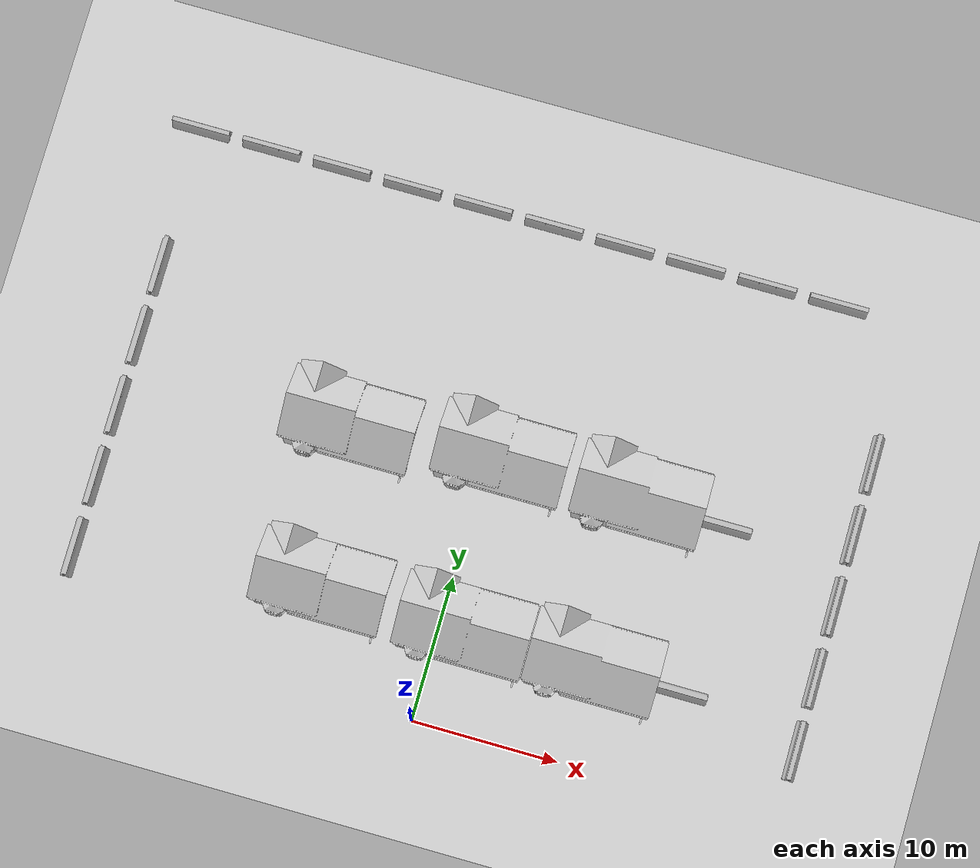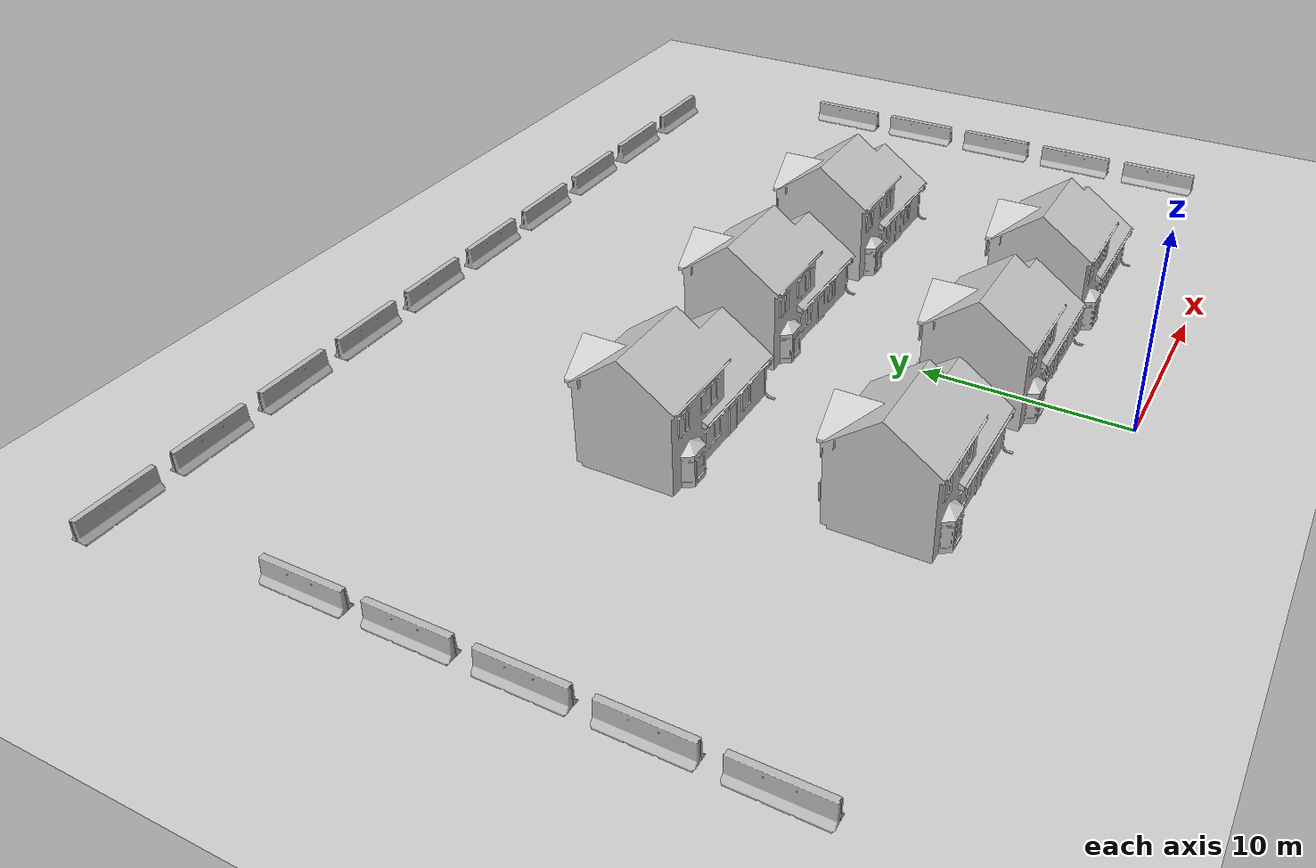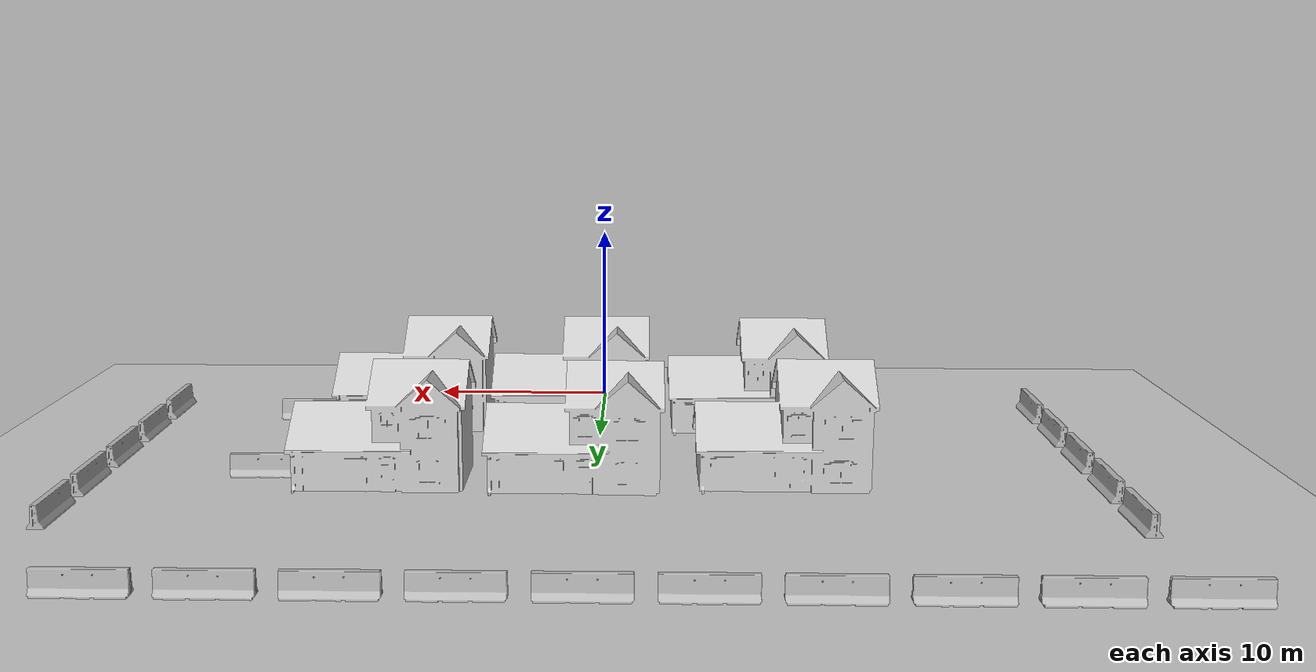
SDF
<sdf version="1.6">
 <world name="default">
  <model name="ground_plane">
   <static>1</static>
   <link name="link">
    <collision name="collision">
     <geometry><plane><normal>0 0 1</normal><size>100 100</size></plane></geometry>
     <surface><friction><ode><mu>100</mu><mu2>50</mu2></ode></friction></surface>
    </collision>
    <visual name="visual">
     <cast_shadows>0</cast_shadows>
     <geometry><plane><normal>0 0 1</normal><size>100 100</size></plane></geometry>
     <material>
      <script><uri>file://media/materials/scripts/gazebo.material</uri><name>Gazebo/Grey</name></script>
     </material>
    </visual>
   </link>
  </model>
  <model name="b11">
   <static>1</static>
   <link name="link">
    <visual name="visual">
     <geometry>
      <mesh><uri>model://jersey_barrier/meshes/jersey_barrier.dae</uri><scale>1 1 1</scale></mesh>
     </geometry>
    </visual>
    <collision name="upright">
     <pose>0 0 0.5715 0 -0 0</pose>
     <geometry><box><size>4.06542 0.3063 1.143</size></box></geometry>
    </collision>
    <collision name="base">
     <pose>0 0 0.032258 0 -0 0</pose>
     <geometry><box><size>4.06542 0.8107 0.064516</size></box></geometry>
    </collision>
    <collision name="base2">
     <pose>0 0 0.1 0 -0 0</pose>
     <geometry><box><size>4.06542 0.65 0.1</size></box></geometry>
    </collision>
    <collision name="base3">
     <pose>0 0 0.2 0 -0 0</pose>
     <geometry><box><size>4.06542 0.5 0.1</size></box></geometry>
    </collision>
    <collision name="left-angle">
     <pose>0 -0.224 0.2401 0.9 -0 0</pose>
     <geometry><box><size>4.06542 0.5 0.064516</size></box></geometry>
    </collision>
    <collision name="right-angle">
     <pose>0 0.224 0.2401 -0.9 0 0</pose>
     <geometry><box><size>4.06542 0.5 0.064516</size></box></geometry>
    </collision>
   </link>
   <pose>-25 35 0 0 -0 0</pose>
  </model>
  <model name="b12">
   <static>1</static>
   <link name="link">
    <visual name="visual">
     <geometry>
      <mesh><uri>model://jersey_barrier/meshes/jersey_barrier.dae</uri><scale>1 1 1</scale></mesh>
     </geometry>
    </visual>
    <collision name="upright">
     <pose>0 0 0.5715 0 -0 0</pose>
     <geometry><box><size>4.06542 0.3063 1.143</size></box></geometry>
    </collision>
    <collision name="base">
     <pose>0 0 0.032258 0 -0 0</pose>
     <geometry><box><size>4.06542 0.8107 0.064516</size></box></geometry>
    </collision>
    <collision name="base2">
     <pose>0 0 0.1 0 -0 0</pose>
     <geometry><box><size>4.06542 0.65 0.1</size></box></geometry>
    </collision>
    <collision name="base3">
     <pose>0 0 0.2 0 -0 0</pose>
     <geometry><box><size>4.06542 0.5 0.1</size></box></geometry>
    </collision>
    <collision name="left-angle">
     <pose>0 -0.224 0.2401 0.9 -0 0</pose>
     <geometry><box><size>4.06542 0.5 0.064516</size></box></geometry>
    </collision>
    <collision name="right-angle">
     <pose>0 0.224 0.2401 -0.9 0 0</pose>
     <geometry><box><size>4.06542 0.5 0.064516</size></box></geometry>
    </collision>
   </link>
   <pose>-20 35 0 0 -0 0</pose>
  </model>
  <model name="b13">
   <static>1</static>
   <link name="link">
    <visual name="visual">
     <geometry>
      <mesh><uri>model://jersey_barrier/meshes/jersey_barrier.dae</uri><scale>1 1 1</scale></mesh>
     </geometry>
    </visual>
    <collision name="upright">
     <pose>0 0 0.5715 0 -0 0</pose>
     <geometry><box><size>4.06542 0.3063 1.143</size></box></geometry>
    </collision>
    <collision name="base">
     <pose>0 0 0.032258 0 -0 0</pose>
     <geometry><box><size>4.06542 0.8107 0.064516</size></box></geometry>
    </collision>
    <collision name="base2">
     <pose>0 0 0.1 0 -0 0</pose>
     <geometry><box><size>4.06542 0.65 0.1</size></box></geometry>
    </collision>
    <collision name="base3">
     <pose>0 0 0.2 0 -0 0</pose>
     <geometry><box><size>4.06542 0.5 0.1</size></box></geometry>
    </collision>
    <collision name="left-angle">
     <pose>0 -0.224 0.2401 0.9 -0 0</pose>
     <geometry><box><size>4.06542 0.5 0.064516</size></box></geometry>
    </collision>
    <collision name="right-angle">
     <pose>0 0.224 0.2401 -0.9 0 0</pose>
     <geometry><box><size>4.06542 0.5 0.064516</size></box></geometry>
    </collision>
   </link>
   <pose>-15 35 0 0 -0 0</pose>
  </model>
  <model name="b14">
   <static>1</static>
   <link name="link">
    <visual name="visual">
     <geometry>
      <mesh><uri>model://jersey_barrier/meshes/jersey_barrier.dae</uri><scale>1 1 1</scale></mesh>
     </geometry>
    </visual>
    <collision name="upright">
     <pose>0 0 0.5715 0 -0 0</pose>
     <geometry><box><size>4.06542 0.3063 1.143</size></box></geometry>
    </collision>
    <collision name="base">
     <pose>0 0 0.032258 0 -0 0</pose>
     <geometry><box><size>4.06542 0.8107 0.064516</size></box></geometry>
    </collision>
    <collision name="base2">
     <pose>0 0 0.1 0 -0 0</pose>
     <geometry><box><size>4.06542 0.65 0.1</size></box></geometry>
    </collision>
    <collision name="base3">
     <pose>0 0 0.2 0 -0 0</pose>
     <geometry><box><size>4.06542 0.5 0.1</size></box></geometry>
    </collision>
    <collision name="left-angle">
     <pose>0 -0.224 0.2401 0.9 -0 0</pose>
     <geometry><box><size>4.06542 0.5 0.064516</size></box></geometry>
    </collision>
    <collision name="right-angle">
     <pose>0 0.224 0.2401 -0.9 0 0</pose>
     <geometry><box><size>4.06542 0.5 0.064516</size></box></geometry>
    </collision>
   </link>
   <pose>-10 35 0 0 -0 0</pose>
  </model>
  <model name="b15">
   <static>1</static>
   <link name="link">
    <visual name="visual">
     <geometry>
      <mesh><uri>model://jersey_barrier/meshes/jersey_barrier.dae</uri><scale>1 1 1</scale></mesh>
     </geometry>
    </visual>
    <collision name="upright">
     <pose>0 0 0.5715 0 -0 0</pose>
     <geometry><box><size>4.06542 0.3063 1.143</size></box></geometry>
    </collision>
    <collision name="base">
     <pose>0 0 0.032258 0 -0 0</pose>
     <geometry><box><size>4.06542 0.8107 0.064516</size></box></geometry>
    </collision>
    <collision name="base2">
     <pose>0 0 0.1 0 -0 0</pose>
     <geometry><box><size>4.06542 0.65 0.1</size></box></geometry>
    </collision>
    <collision name="base3">
     <pose>0 0 0.2 0 -0 0</pose>
     <geometry><box><size>4.06542 0.5 0.1</size></box></geometry>
    </collision>
    <collision name="left-angle">
     <pose>0 -0.224 0.2401 0.9 -0 0</pose>
     <geometry><box><size>4.06542 0.5 0.064516</size></box></geometry>
    </collision>
    <collision name="right-angle">
     <pose>0 0.224 0.2401 -0.9 0 0</pose>
     <geometry><box><size>4.06542 0.5 0.064516</size></box></geometry>
    </collision>
   </link>
   <pose>-5 35 0 0 -0 0</pose>
  </model>
  <model name="b16">
   <static>1</static>
   <link name="link">
    <visual name="visual">
     <geometry>
      <mesh><uri>model://jersey_barrier/meshes/jersey_barrier.dae</uri><scale>1 1 1</scale></mesh>
     </geometry>
    </visual>
    <collision name="upright">
     <pose>0 0 0.5715 0 -0 0</pose>
     <geometry><box><size>4.06542 0.3063 1.143</size></box></geometry>
    </collision>
    <collision name="base">
     <pose>0 0 0.032258 0 -0 0</pose>
     <geometry><box><size>4.06542 0.8107 0.064516</size></box></geometry>
    </collision>
    <collision name="base2">
     <pose>0 0 0.1 0 -0 0</pose>
     <geometry><box><size>4.06542 0.65 0.1</size></box></geometry>
    </collision>
    <collision name="base3">
     <pose>0 0 0.2 0 -0 0</pose>
     <geometry><box><size>4.06542 0.5 0.1</size></box></geometry>
    </collision>
    <collision name="left-angle">
     <pose>0 -0.224 0.2401 0.9 -0 0</pose>
     <geometry><box><size>4.06542 0.5 0.064516</size></box></geometry>
    </collision>
    <collision name="right-angle">
     <pose>0 0.224 0.2401 -0.9 0 0</pose>
     <geometry><box><size>4.06542 0.5 0.064516</size></box></geometry>
    </collision>
   </link>
   <pose>0 35 0 0 -0 0</pose>
  </model>
  <model name="b17">
   <static>1</static>
   <link name="link">
    <visual name="visual">
     <geometry>
      <mesh><uri>model://jersey_barrier/meshes/jersey_barrier.dae</uri><scale>1 1 1</scale></mesh>
     </geometry>
    </visual>
    <collision name="upright">
     <pose>0 0 0.5715 0 -0 0</pose>
     <geometry><box><size>4.06542 0.3063 1.143</size></box></geometry>
    </collision>
    <collision name="base">
     <pose>0 0 0.032258 0 -0 0</pose>
     <geometry><box><size>4.06542 0.8107 0.064516</size></box></geometry>
    </collision>
    <collision name="base2">
     <pose>0 0 0.1 0 -0 0</pose>
     <geometry><box><size>4.06542 0.65 0.1</size></box></geometry>
    </collision>
    <collision name="base3">
     <pose>0 0 0.2 0 -0 0</pose>
     <geometry><box><size>4.06542 0.5 0.1</size></box></geometry>
    </collision>
    <collision name="left-angle">
     <pose>0 -0.224 0.2401 0.9 -0 0</pose>
     <geometry><box><size>4.06542 0.5 0.064516</size></box></geometry>
    </collision>
    <collision name="right-angle">
     <pose>0 0.224 0.2401 -0.9 0 0</pose>
     <geometry><box><size>4.06542 0.5 0.064516</size></box></geometry>
    </collision>
   </link>
   <pose>5 35 0 0 -0 0</pose>
  </model>
  <model name="b18">
   <static>1</static>
   <link name="link">
    <visual name="visual">
     <geometry>
      <mesh><uri>model://jersey_barrier/meshes/jersey_barrier.dae</uri><scale>1 1 1</scale></mesh>
     </geometry>
    </visual>
    <collision name="upright">
     <pose>0 0 0.5715 0 -0 0</pose>
     <geometry><box><size>4.06542 0.3063 1.143</size></box></geometry>
    </collision>
    <collision name="base">
     <pose>0 0 0.032258 0 -0 0</pose>
     <geometry><box><size>4.06542 0.8107 0.064516</size></box></geometry>
    </collision>
    <collision name="base2">
     <pose>0 0 0.1 0 -0 0</pose>
     <geometry><box><size>4.06542 0.65 0.1</size></box></geometry>
    </collision>
    <collision name="base3">
     <pose>0 0 0.2 0 -0 0</pose>
     <geometry><box><size>4.06542 0.5 0.1</size></box></geometry>
    </collision>
    <collision name="left-angle">
     <pose>0 -0.224 0.2401 0.9 -0 0</pose>
     <geometry><box><size>4.06542 0.5 0.064516</size></box></geometry>
    </collision>
    <collision name="right-angle">
     <pose>0 0.224 0.2401 -0.9 0 0</pose>
     <geometry><box><size>4.06542 0.5 0.064516</size></box></geometry>
    </collision>
   </link>
   <pose>10 35 0 0 -0 0</pose>
  </model>
  <model name="b19">
   <static>1</static>
   <link name="link">
    <visual name="visual">
     <geometry>
      <mesh><uri>model://jersey_barrier/meshes/jersey_barrier.dae</uri><scale>1 1 1</scale></mesh>
     </geometry>
    </visual>
    <collision name="upright">
     <pose>0 0 0.5715 0 -0 0</pose>
     <geometry><box><size>4.06542 0.3063 1.143</size></box></geometry>
    </collision>
    <collision name="base">
     <pose>0 0 0.032258 0 -0 0</pose>
     <geometry><box><size>4.06542 0.8107 0.064516</size></box></geometry>
    </collision>
    <collision name="base2">
     <pose>0 0 0.1 0 -0 0</pose>
     <geometry><box><size>4.06542 0.65 0.1</size></box></geometry>
    </collision>
    <collision name="base3">
     <pose>0 0 0.2 0 -0 0</pose>
     <geometry><box><size>4.06542 0.5 0.1</size></box></geometry>
    </collision>
    <collision name="left-angle">
     <pose>0 -0.224 0.2401 0.9 -0 0</pose>
     <geometry><box><size>4.06542 0.5 0.064516</size></box></geometry>
    </collision>
    <collision name="right-angle">
     <pose>0 0.224 0.2401 -0.9 0 0</pose>
     <geometry><box><size>4.06542 0.5 0.064516</size></box></geometry>
    </collision>
   </link>
   <pose>15 35 0 0 -0 0</pose>
  </model>
  <model name="b20">
   <static>1</static>
   <link name="link">
    <visual name="visual">
     <geometry>
      <mesh><uri>model://jersey_barrier/meshes/jersey_barrier.dae</uri><scale>1 1 1</scale></mesh>
     </geometry>
    </visual>
    <collision name="upright">
     <pose>0 0 0.5715 0 -0 0</pose>
     <geometry><box><size>4.06542 0.3063 1.143</size></box></geometry>
    </collision>
    <collision name="base">
     <pose>0 0 0.032258 0 -0 0</pose>
     <geometry><box><size>4.06542 0.8107 0.064516</size></box></geometry>
    </collision>
    <collision name="base2">
     <pose>0 0 0.1 0 -0 0</pose>
     <geometry><box><size>4.06542 0.65 0.1</size></box></geometry>
    </collision>
    <collision name="base3">
     <pose>0 0 0.2 0 -0 0</pose>
     <geometry><box><size>4.06542 0.5 0.1</size></box></geometry>
    </collision>
    <collision name="left-angle">
     <pose>0 -0.224 0.2401 0.9 -0 0</pose>
     <geometry><box><size>4.06542 0.5 0.064516</size></box></geometry>
    </collision>
    <collision name="right-angle">
     <pose>0 0.224 0.2401 -0.9 0 0</pose>
     <geometry><box><size>4.06542 0.5 0.064516</size></box></geometry>
    </collision>
   </link>
   <pose>20 35 0 0 -0 0</pose>
  </model>
  <model name="b26">
   <static>1</static>
   <link name="link">
    <visual name="visual">
     <geometry>
      <mesh><uri>model://jersey_barrier/meshes/jersey_barrier.dae</uri><scale>1 1 1</scale></mesh>
     </geometry>
    </visual>
    <collision name="upright">
     <pose>0 0 0.5715 0 -0 0</pose>
     <geometry><box><size>4.06542 0.3063 1.143</size></box></geometry>
    </collision>
    <collision name="base">
     <pose>0 0 0.032258 0 -0 0</pose>
     <geometry><box><size>4.06542 0.8107 0.064516</size></box></geometry>
    </collision>
    <collision name="base2">
     <pose>0 0 0.1 0 -0 0</pose>
     <geometry><box><size>4.06542 0.65 0.1</size></box></geometry>
    </collision>
    <collision name="base3">
     <pose>0 0 0.2 0 -0 0</pose>
     <geometry><box><size>4.06542 0.5 0.1</size></box></geometry>
    </collision>
    <collision name="left-angle">
     <pose>0 -0.224 0.2401 0.9 -0 0</pose>
     <geometry><box><size>4.06542 0.5 0.064516</size></box></geometry>
    </collision>
    <collision name="right-angle">
     <pose>0 0.224 0.2401 -0.9 0 0</pose>
     <geometry><box><size>4.06542 0.5 0.064516</size></box></geometry>
    </collision>
   </link>
   <pose>-25 5 0 0 0 -1.5708</pose>
  </model>
  <model name="b27">
   <static>1</static>
   <link name="link">
    <visual name="visual">
     <geometry>
      <mesh><uri>model://jersey_barrier/meshes/jersey_barrier.dae</uri><scale>1 1 1</scale></mesh>
     </geometry>
    </visual>
    <collision name="upright">
     <pose>0 0 0.5715 0 -0 0</pose>
     <geometry><box><size>4.06542 0.3063 1.143</size></box></geometry>
    </collision>
    <collision name="base">
     <pose>0 0 0.032258 0 -0 0</pose>
     <geometry><box><size>4.06542 0.8107 0.064516</size></box></geometry>
    </collision>
    <collision name="base2">
     <pose>0 0 0.1 0 -0 0</pose>
     <geometry><box><size>4.06542 0.65 0.1</size></box></geometry>
    </collision>
    <collision name="base3">
     <pose>0 0 0.2 0 -0 0</pose>
     <geometry><box><size>4.06542 0.5 0.1</size></box></geometry>
    </collision>
    <collision name="left-angle">
     <pose>0 -0.224 0.2401 0.9 -0 0</pose>
     <geometry><box><size>4.06542 0.5 0.064516</size></box></geometry>
    </collision>
    <collision name="right-angle">
     <pose>0 0.224 0.2401 -0.9 0 0</pose>
     <geometry><box><size>4.06542 0.5 0.064516</size></box></geometry>
    </collision>
   </link>
   <pose>-25 10 0 0 0 -1.5708</pose>
  </model>
  <model name="b28">
   <static>1</static>
   <link name="link">
    <visual name="visual">
     <geometry>
      <mesh><uri>model://jersey_barrier/meshes/jersey_barrier.dae</uri><scale>1 1 1</scale></mesh>
     </geometry>
    </visual>
    <collision name="upright">
     <pose>0 0 0.5715 0 -0 0</pose>
     <geometry><box><size>4.06542 0.3063 1.143</size></box></geometry>
    </collision>
    <collision name="base">
     <pose>0 0 0.032258 0 -0 0</pose>
     <geometry><box><size>4.06542 0.8107 0.064516</size></box></geometry>
    </collision>
    <collision name="base2">
     <pose>0 0 0.1 0 -0 0</pose>
     <geometry><box><size>4.06542 0.65 0.1</size></box></geometry>
    </collision>
    <collision name="base3">
     <pose>0 0 0.2 0 -0 0</pose>
     <geometry><box><size>4.06542 0.5 0.1</size></box></geometry>
    </collision>
    <collision name="left-angle">
     <pose>0 -0.224 0.2401 0.9 -0 0</pose>
     <geometry><box><size>4.06542 0.5 0.064516</size></box></geometry>
    </collision>
    <collision name="right-angle">
     <pose>0 0.224 0.2401 -0.9 0 0</pose>
     <geometry><box><size>4.06542 0.5 0.064516</size></box></geometry>
    </collision>
   </link>
   <pose>-25 15 0 0 0 -1.5708</pose>
  </model>
  <model name="b29">
   <static>1</static>
   <link name="link">
    <visual name="visual">
     <geometry>
      <mesh><uri>model://jersey_barrier/meshes/jersey_barrier.dae</uri><scale>1 1 1</scale></mesh>
     </geometry>
    </visual>
    <collision name="upright">
     <pose>0 0 0.5715 0 -0 0</pose>
     <geometry><box><size>4.06542 0.3063 1.143</size></box></geometry>
    </collision>
    <collision name="base">
     <pose>0 0 0.032258 0 -0 0</pose>
     <geometry><box><size>4.06542 0.8107 0.064516</size></box></geometry>
    </collision>
    <collision name="base2">
     <pose>0 0 0.1 0 -0 0</pose>
     <geometry><box><size>4.06542 0.65 0.1</size></box></geometry>
    </collision>
    <collision name="base3">
     <pose>0 0 0.2 0 -0 0</pose>
     <geometry><box><size>4.06542 0.5 0.1</size></box></geometry>
    </collision>
    <collision name="left-angle">
     <pose>0 -0.224 0.2401 0.9 -0 0</pose>
     <geometry><box><size>4.06542 0.5 0.064516</size></box></geometry>
    </collision>
    <collision name="right-angle">
     <pose>0 0.224 0.2401 -0.9 0 0</pose>
     <geometry><box><size>4.06542 0.5 0.064516</size></box></geometry>
    </collision>
   </link>
   <pose>-25 20 0 0 0 -1.5708</pose>
  </model>
  <model name="b30">
   <static>1</static>
   <link name="link">
    <visual name="visual">
     <geometry>
      <mesh><uri>model://jersey_barrier/meshes/jersey_barrier.dae</uri><scale>1 1 1</scale></mesh>
     </geometry>
    </visual>
    <collision name="upright">
     <pose>0 0 0.5715 0 -0 0</pose>
     <geometry><box><size>4.06542 0.3063 1.143</size></box></geometry>
    </collision>
    <collision name="base">
     <pose>0 0 0.032258 0 -0 0</pose>
     <geometry><box><size>4.06542 0.8107 0.064516</size></box></geometry>
    </collision>
    <collision name="base2">
     <pose>0 0 0.1 0 -0 0</pose>
     <geometry><box><size>4.06542 0.65 0.1</size></box></geometry>
    </collision>
    <collision name="base3">
     <pose>0 0 0.2 0 -0 0</pose>
     <geometry><box><size>4.06542 0.5 0.1</size></box></geometry>
    </collision>
    <collision name="left-angle">
     <pose>0 -0.224 0.2401 0.9 -0 0</pose>
     <geometry><box><size>4.06542 0.5 0.064516</size></box></geometry>
    </collision>
    <collision name="right-angle">
     <pose>0 0.224 0.2401 -0.9 0 0</pose>
     <geometry><box><size>4.06542 0.5 0.064516</size></box></geometry>
    </collision>
   </link>
   <pose>-25 25 0 0 0 -1.5708</pose>
  </model>
  <model name="b36">
   <static>1</static>
   <link name="link">
    <visual name="visual">
     <geometry>
      <mesh><uri>model://jersey_barrier/meshes/jersey_barrier.dae</uri><scale>1 1 1</scale></mesh>
     </geometry>
    </visual>
    <collision name="upright">
     <pose>0 0 0.5715 0 -0 0</pose>
     <geometry><box><size>4.06542 0.3063 1.143</size></box></geometry>
    </collision>
    <collision name="base">
     <pose>0 0 0.032258 0 -0 0</pose>
     <geometry><box><size>4.06542 0.8107 0.064516</size></box></geometry>
    </collision>
    <collision name="base2">
     <pose>0 0 0.1 0 -0 0</pose>
     <geometry><box><size>4.06542 0.65 0.1</size></box></geometry>
    </collision>
    <collision name="base3">
     <pose>0 0 0.2 0 -0 0</pose>
     <geometry><box><size>4.06542 0.5 0.1</size></box></geometry>
    </collision>
    <collision name="left-angle">
     <pose>0 -0.224 0.2401 0.9 -0 0</pose>
     <geometry><box><size>4.06542 0.5 0.064516</size></box></geometry>
    </collision>
    <collision name="right-angle">
     <pose>0 0.224 0.2401 -0.9 0 0</pose>
     <geometry><box><size>4.06542 0.5 0.064516</size></box></geometry>
    </collision>
   </link>
   <pose>25 5 0 0 0 -1.5708</pose>
  </model>
  <model name="b37">
   <static>1</static>
   <link name="link">
    <visual name="visual">
     <geometry>
      <mesh><uri>model://jersey_barrier/meshes/jersey_barrier.dae</uri><scale>1 1 1</scale></mesh>
     </geometry>
    </visual>
    <collision name="upright">
     <pose>0 0 0.5715 0 -0 0</pose>
     <geometry><box><size>4.06542 0.3063 1.143</size></box></geometry>
    </collision>
    <collision name="base">
     <pose>0 0 0.032258 0 -0 0</pose>
     <geometry><box><size>4.06542 0.8107 0.064516</size></box></geometry>
    </collision>
    <collision name="base2">
     <pose>0 0 0.1 0 -0 0</pose>
     <geometry><box><size>4.06542 0.65 0.1</size></box></geometry>
    </collision>
    <collision name="base3">
     <pose>0 0 0.2 0 -0 0</pose>
     <geometry><box><size>4.06542 0.5 0.1</size></box></geometry>
    </collision>
    <collision name="left-angle">
     <pose>0 -0.224 0.2401 0.9 -0 0</pose>
     <geometry><box><size>4.06542 0.5 0.064516</size></box></geometry>
    </collision>
    <collision name="right-angle">
     <pose>0 0.224 0.2401 -0.9 0 0</pose>
     <geometry><box><size>4.06542 0.5 0.064516</size></box></geometry>
    </collision>
   </link>
   <pose>25 10 0 0 0 -1.5708</pose>
  </model>
  <model name="b38">
   <static>1</static>
   <link name="link">
    <visual name="visual">
     <geometry>
      <mesh><uri>model://jersey_barrier/meshes/jersey_barrier.dae</uri><scale>1 1 1</scale></mesh>
     </geometry>
    </visual>
    <collision name="upright">
     <pose>0 0 0.5715 0 -0 0</pose>
     <geometry><box><size>4.06542 0.3063 1.143</size></box></geometry>
    </collision>
    <collision name="base">
     <pose>0 0 0.032258 0 -0 0</pose>
     <geometry><box><size>4.06542 0.8107 0.064516</size></box></geometry>
    </collision>
    <collision name="base2">
     <pose>0 0 0.1 0 -0 0</pose>
     <geometry><box><size>4.06542 0.65 0.1</size></box></geometry>
    </collision>
    <collision name="base3">
     <pose>0 0 0.2 0 -0 0</pose>
     <geometry><box><size>4.06542 0.5 0.1</size></box></geometry>
    </collision>
    <collision name="left-angle">
     <pose>0 -0.224 0.2401 0.9 -0 0</pose>
     <geometry><box><size>4.06542 0.5 0.064516</size></box></geometry>
    </collision>
    <collision name="right-angle">
     <pose>0 0.224 0.2401 -0.9 0 0</pose>
     <geometry><box><size>4.06542 0.5 0.064516</size></box></geometry>
    </collision>
   </link>
   <pose>25 15 0 0 0 -1.5708</pose>
  </model>
  <model name="b39">
   <static>1</static>
   <link name="link">
    <visual name="visual">
     <geometry>
      <mesh><uri>model://jersey_barrier/meshes/jersey_barrier.dae</uri><scale>1 1 1</scale></mesh>
     </geometry>
    </visual>
    <collision name="upright">
     <pose>0 0 0.5715 0 -0 0</pose>
     <geometry><box><size>4.06542 0.3063 1.143</size></box></geometry>
    </collision>
    <collision name="base">
     <pose>0 0 0.032258 0 -0 0</pose>
     <geometry><box><size>4.06542 0.8107 0.064516</size></box></geometry>
    </collision>
    <collision name="base2">
     <pose>0 0 0.1 0 -0 0</pose>
     <geometry><box><size>4.06542 0.65 0.1</size></box></geometry>
    </collision>
    <collision name="base3">
     <pose>0 0 0.2 0 -0 0</pose>
     <geometry><box><size>4.06542 0.5 0.1</size></box></geometry>
    </collision>
    <collision name="left-angle">
     <pose>0 -0.224 0.2401 0.9 -0 0</pose>
     <geometry><box><size>4.06542 0.5 0.064516</size></box></geometry>
    </collision>
    <collision name="right-angle">
     <pose>0 0.224 0.2401 -0.9 0 0</pose>
     <geometry><box><size>4.06542 0.5 0.064516</size></box></geometry>
    </collision>
   </link>
   <pose>25 20 0 0 0 -1.5708</pose>
  </model>
  <model name="b40">
   <static>1</static>
   <link name="link">
    <visual name="visual">
     <geometry>
      <mesh><uri>model://jersey_barrier/meshes/jersey_barrier.dae</uri><scale>1 1 1</scale></mesh>
     </geometry>
    </visual>
    <collision name="upright">
     <pose>0 0 0.5715 0 -0 0</pose>
     <geometry><box><size>4.06542 0.3063 1.143</size></box></geometry>
    </collision>
    <collision name="base">
     <pose>0 0 0.032258 0 -0 0</pose>
     <geometry><box><size>4.06542 0.8107 0.064516</size></box></geometry>
    </collision>
    <collision name="base2">
     <pose>0 0 0.1 0 -0 0</pose>
     <geometry><box><size>4.06542 0.65 0.1</size></box></geometry>
    </collision>
    <collision name="base3">
     <pose>0 0 0.2 0 -0 0</pose>
     <geometry><box><size>4.06542 0.5 0.1</size></box></geometry>
    </collision>
    <collision name="left-angle">
     <pose>0 -0.224 0.2401 0.9 -0 0</pose>
     <geometry><box><size>4.06542 0.5 0.064516</size></box></geometry>
    </collision>
    <collision name="right-angle">
     <pose>0 0.224 0.2401 -0.9 0 0</pose>
     <geometry><box><size>4.06542 0.5 0.064516</size></box></geometry>
    </collision>
   </link>
   <pose>25 25 0 0 0 -1.5708</pose>
  </model>
  <model name="House 3_0_clone_clone">
   <static>1</static>
   <link name="link">
    <collision name="collision">
     <geometry><mesh><uri>model://house_3/meshes/house_3.dae</uri><scale>1 1 1</scale></mesh></geometry>
    </collision>
    <visual name="visual">
     <geometry><mesh><uri>model://house_3/meshes/house_3.dae</uri><scale>1 1 1</scale></mesh></geometry>
     <material>
      <script>
       <uri>model://house_3/materials/scripts</uri>
       <uri>model://house_3/materials/textures</uri>
       <name>House_3/Diffuse</name>
      </script>
     </material>
    </visual>
   </link>
   <pose>10.938 6.8447 0 0 -0 0</pose>
  </model>
  <model name="House 3_0_clone_clone_0">
   <static>1</static>
   <link name="link">
    <collision name="collision">
     <geometry><mesh><uri>model://house_3/meshes/house_3.dae</uri><scale>1 1 1</scale></mesh></geometry>
    </collision>
    <visual name="visual">
     <geometry><mesh><uri>model://house_3/meshes/house_3.dae</uri><scale>1 1 1</scale></mesh></geometry>
     <material>
      <script>
       <uri>model://house_3/materials/scripts</uri>
       <uri>model://house_3/materials/textures</uri>
       <name>House_3/Diffuse</name>
      </script>
     </material>
    </visual>
   </link>
   <pose>2.04657 6.87047 0 0 -0 0</pose>
  </model>
  <model name="House 3_0_clone_clone_1">
   <static>1</static>
   <link name="link">
    <collision name="collision">
     <geometry><mesh><uri>model://house_3/meshes/house_3.dae</uri><scale>1 1 1</scale></mesh></geometry>
    </collision>
    <visual name="visual">
     <geometry><mesh><uri>model://house_3/meshes/house_3.dae</uri><scale>1 1 1</scale></mesh></geometry>
     <material>
      <script>
       <uri>model://house_3/materials/scripts</uri>
       <uri>model://house_3/materials/textures</uri>
       <name>House_3/Diffuse</name>
      </script>
     </material>
    </visual>
   </link>
   <pose>-7.8413 7.13128 0 0 -0 0</pose>
  </model>
  <model name="House 3_0_clone_clone_2">
   <static>1</static>
   <link name="link">
    <collision name="collision">
     <geometry><mesh><uri>model://house_3/meshes/house_3.dae</uri><scale>1 1 1</scale></mesh></geometry>
    </collision>
    <visual name="visual">
     <geometry><mesh><uri>model://house_3/meshes/house_3.dae</uri><scale>1 1 1</scale></mesh></geometry>
     <material>
      <script>
       <uri>model://house_3/materials/scripts</uri>
       <uri>model://house_3/materials/textures</uri>
       <name>House_3/Diffuse</name>
      </script>
     </material>
    </visual>
   </link>
   <pose>-8.99448 18.0553 0 0 -0 0</pose>
  </model>
  <model name="House 3_0_clone_clone_3">
   <static>1</static>
   <link name="link">
    <collision name="collision">
     <geometry><mesh><uri>model://house_3/meshes/house_3.dae</uri><scale>1 1 1</scale></mesh></geometry>
    </collision>
    <visual name="visual">
     <geometry><mesh><uri>model://house_3/meshes/house_3.dae</uri><scale>1 1 1</scale></mesh></geometry>
     <material>
      <script>
       <uri>model://house_3/materials/scripts</uri>
       <uri>model://house_3/materials/textures</uri>
       <name>House_3/Diffuse</name>
      </script>
     </material>
    </visual>
   </link>
   <pose>1.32733 18.6262 0 0 -0 0</pose>
  </model>
  <model name="House 3_0_clone_clone_4">
   <static>1</static>
   <link name="link">
    <collision name="collision">
     <geometry><mesh><uri>model://house_3/meshes/house_3.dae</uri><scale>1 1 1</scale></mesh></geometry>
    </collision>
    <visual name="visual">
     <geometry><mesh><uri>model://house_3/meshes/house_3.dae</uri><scale>1 1 1</scale></mesh></geometry>
     <material>
      <script>
       <uri>model://house_3/materials/scripts</uri>
       <uri>model://house_3/materials/textures</uri>
       <name>House_3/Diffuse</name>
      </script>
     </material>
    </visual>
   </link>
   <pose>10.9285 18.4641 0 0 -0 0</pose>
  </model>
  <model name="b10_clone_1">
   <static>1</static>
   <link name="link">
    <visual name="visual">
     <geometry>
      <mesh><uri>model://jersey_barrier/meshes/jersey_barrier.dae</uri><scale>1 1 1</scale></mesh>
     </geometry>
    </visual>
    <collision name="upright">
     <pose>0 0 0.5715 0 -0 0</pose>
     <geometry><box><size>4.06542 0.3063 1.143</size></box></geometry>
    </collision>
    <collision name="base">
     <pose>0 0 0.032258 0 -0 0</pose>
     <geometry><box><size>4.06542 0.8107 0.064516</size></box></geometry>
    </collision>
    <collision name="base2">
     <pose>0 0 0.1 0 -0 0</pose>
     <geometry><box><size>4.06542 0.65 0.1</size></box></geometry>
    </collision>
    <collision name="base3">
     <pose>0 0 0.2 0 -0 0</pose>
     <geometry><box><size>4.06542 0.5 0.1</size></box></geometry>
    </collision>
    <collision name="left-angle">
     <pose>0 -0.224 0.2401 0.9 -0 0</pose>
     <geometry><box><size>4.06542 0.5 0.064516</size></box></geometry>
    </collision>
    <collision name="right-angle">
     <pose>0 0.224 0.2401 -0.9 0 0</pose>
     <geometry><box><size>4.06542 0.5 0.064516</size></box></geometry>
    </collision>
   </link>
   <pose>16.4381 6.68672 0 0 -0 0</pose>
  </model>
  <model name="b10_clone_2">
   <static>1</static>
   <link name="link">
    <visual name="visual">
     <geometry>
      <mesh><uri>model://jersey_barrier/meshes/jersey_barrier.dae</uri><scale>1 1 1</scale></mesh>
     </geometry>
    </visual>
    <collision name="upright">
     <pose>0 0 0.5715 0 -0 0</pose>
     <geometry><box><size>4.06542 0.3063 1.143</size></box></geometry>
    </collision>
    <collision name="base">
     <pose>0 0 0.032258 0 -0 0</pose>
     <geometry><box><size>4.06542 0.8107 0.064516</size></box></geometry>
    </collision>
    <collision name="base2">
     <pose>0 0 0.1 0 -0 0</pose>
     <geometry><box><size>4.06542 0.65 0.1</size></box></geometry>
    </collision>
    <collision name="base3">
     <pose>0 0 0.2 0 -0 0</pose>
     <geometry><box><size>4.06542 0.5 0.1</size></box></geometry>
    </collision>
    <collision name="left-angle">
     <pose>0 -0.224 0.2401 0.9 -0 0</pose>
     <geometry><box><size>4.06542 0.5 0.064516</size></box></geometry>
    </collision>
    <collision name="right-angle">
     <pose>0 0.224 0.2401 -0.9 0 0</pose>
     <geometry><box><size>4.06542 0.5 0.064516</size></box></geometry>
    </collision>
   </link>
   <pose>16.3803 18.2521 0 0 -0 0</pose>
  </model>
 </world>
</sdf>
